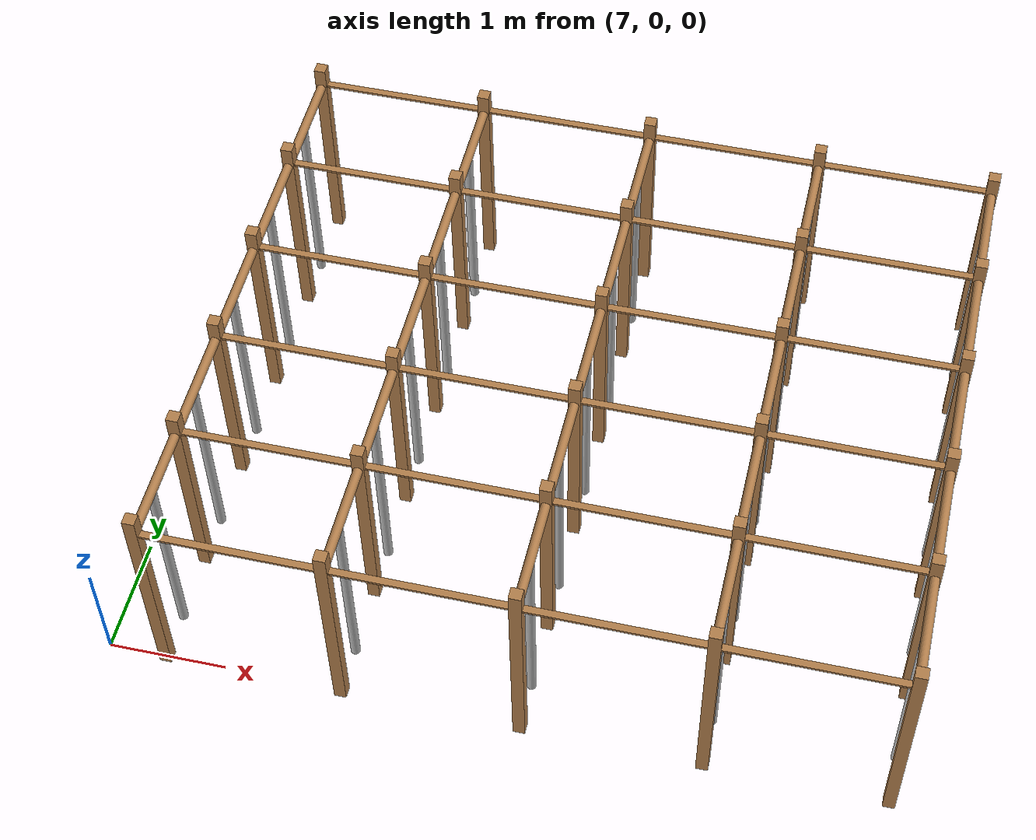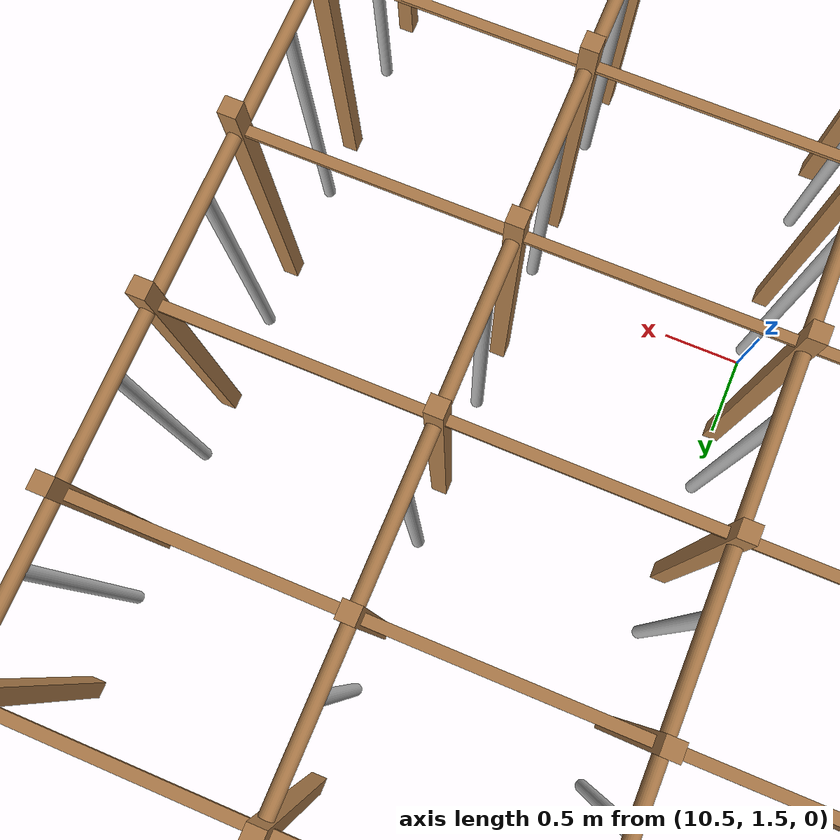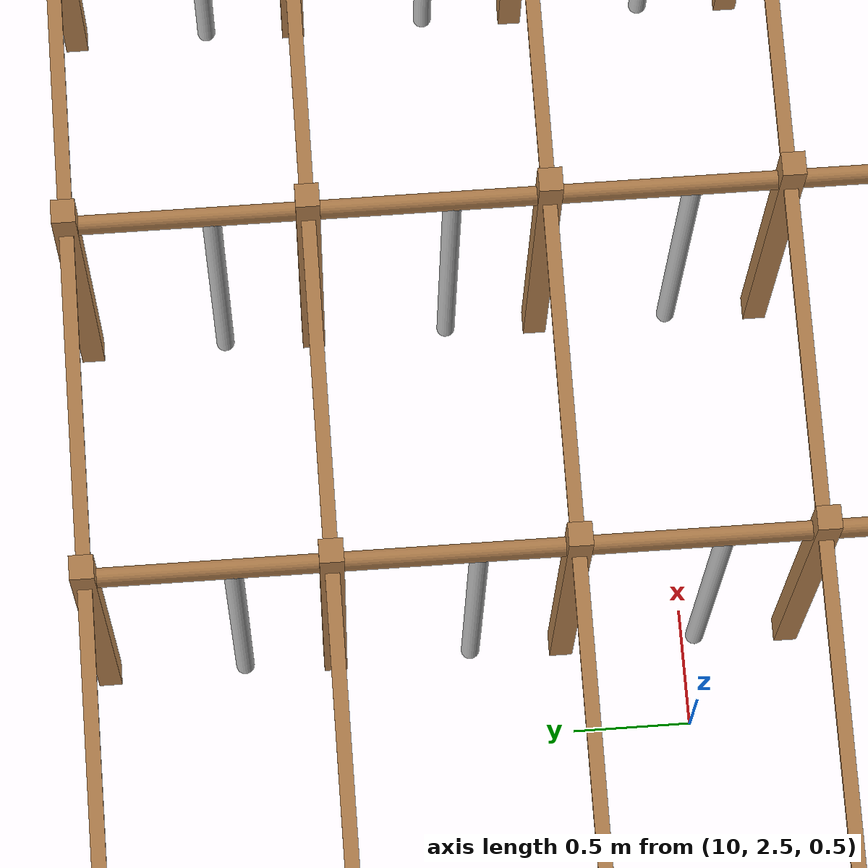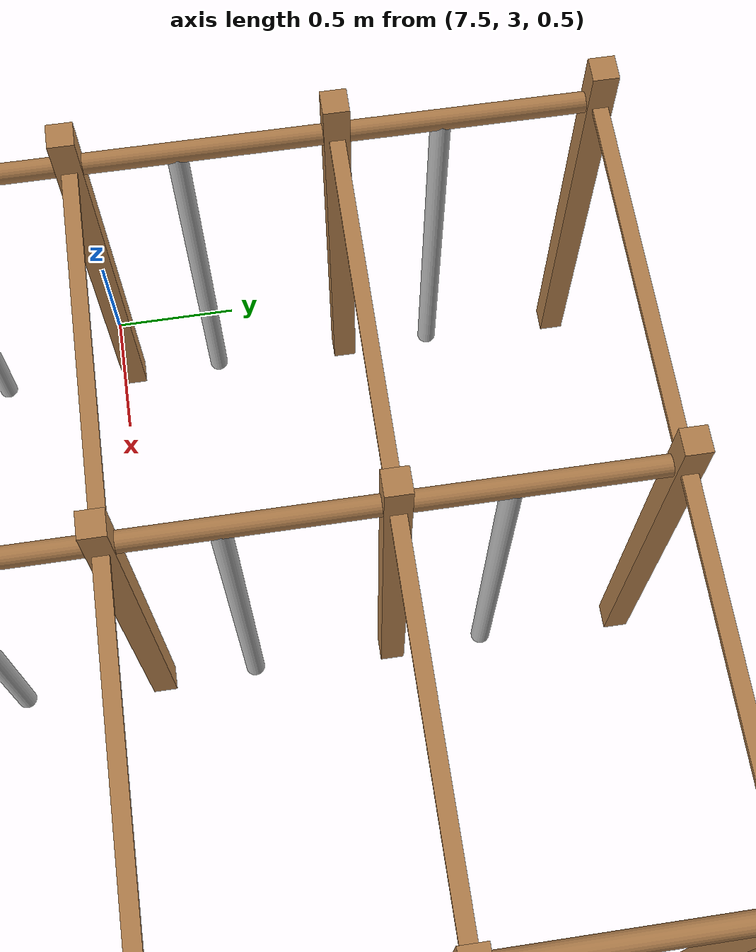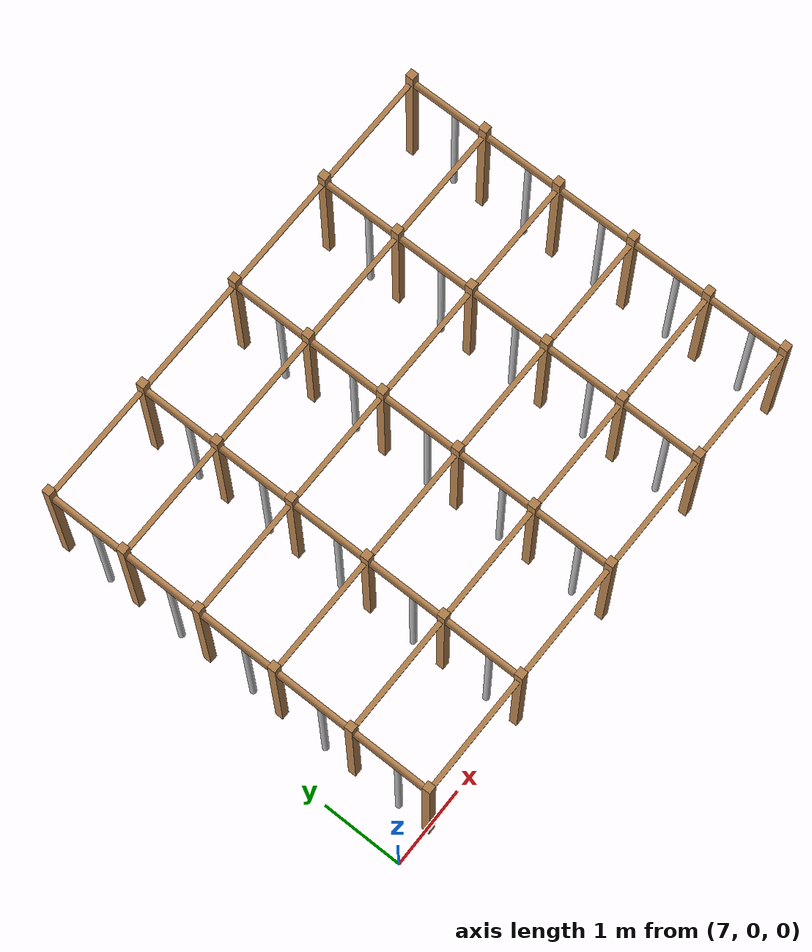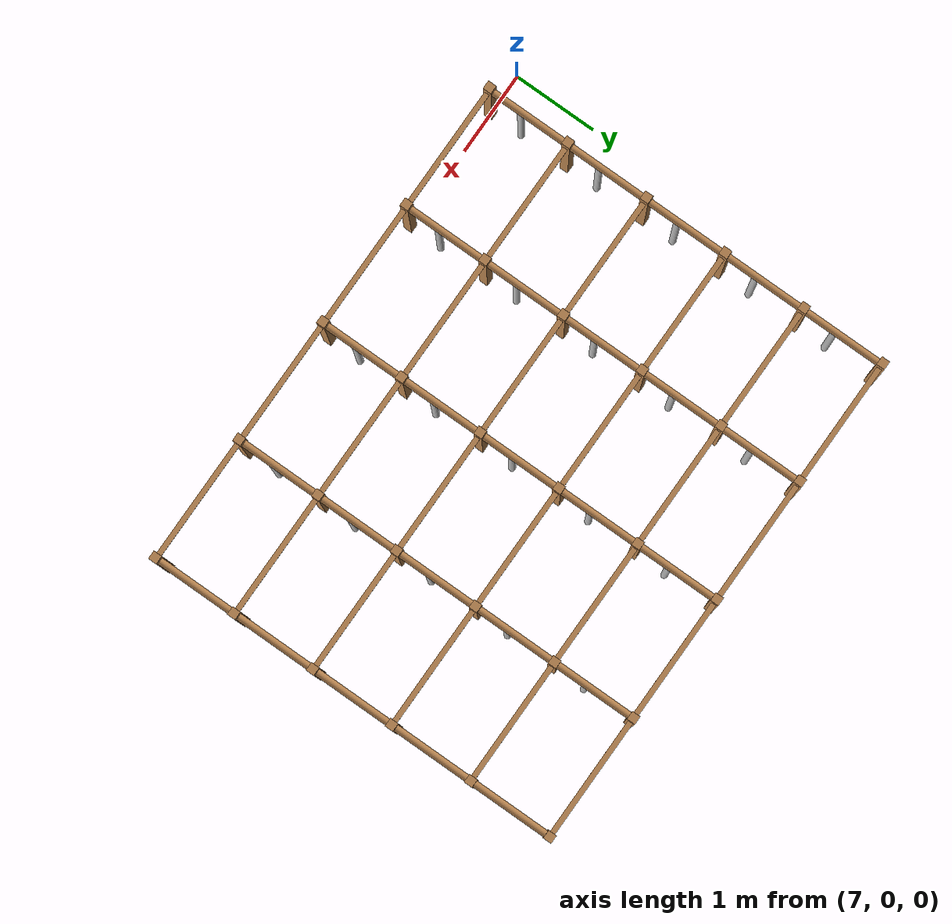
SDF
<sdf version="1.4">
 <model name="pergola">
  <include><name>post_55</name><pose>7.5 0.0 0 0 0 0</pose><uri>model://post</uri></include>
  <include><name>post_56</name><pose>7.5 1.0 0 0 0 0</pose><uri>model://post</uri></include>
  <include><name>post_57</name><pose>7.5 2.0 0 0 0 0</pose><uri>model://post</uri></include>
  <include><name>post_58</name><pose>7.5 3.0 0 0 0 0</pose><uri>model://post</uri></include>
  <include><name>post_59</name><pose>7.5 4.0 0 0 0 0</pose><uri>model://post</uri></include>
  <include><name>post_60</name><pose>7.5 5.0 0 0 0 0</pose><uri>model://post</uri></include>
  <include><name>post_66</name><pose>9.0 0.0 0 0 0 0</pose><uri>model://post</uri></include>
  <include><name>post_67</name><pose>9.0 1.0 0 0 0 0</pose><uri>model://post</uri></include>
  <include><name>post_68</name><pose>9.0 2.0 0 0 0 0</pose><uri>model://post</uri></include>
  <include><name>post_69</name><pose>9.0 3.0 0 0 0 0</pose><uri>model://post</uri></include>
  <include><name>post_70</name><pose>9.0 4.0 0 0 0 0</pose><uri>model://post</uri></include>
  <include><name>post_71</name><pose>9.0 5.0 0 0 0 0</pose><uri>model://post</uri></include>
  <include><name>post_77</name><pose>10.5 0.0 0 0 0 0</pose><uri>model://post</uri></include>
  <include><name>post_78</name><pose>10.5 1.0 0 0 0 0</pose><uri>model://post</uri></include>
  <include><name>post_79</name><pose>10.5 2.0 0 0 0 0</pose><uri>model://post</uri></include>
  <include><name>post_80</name><pose>10.5 3.0 0 0 0 0</pose><uri>model://post</uri></include>
  <include><name>post_81</name><pose>10.5 4.0 0 0 0 0</pose><uri>model://post</uri></include>
  <include><name>post_82</name><pose>10.5 5.0 0 0 0 0</pose><uri>model://post</uri></include>
  <include><name>post_88</name><pose>12.0 0.0 0 0 0 0</pose><uri>model://post</uri></include>
  <include><name>post_89</name><pose>12.0 1.0 0 0 0 0</pose><uri>model://post</uri></include>
  <include><name>post_90</name><pose>12.0 2.0 0 0 0 0</pose><uri>model://post</uri></include>
  <include><name>post_91</name><pose>12.0 3.0 0 0 0 0</pose><uri>model://post</uri></include>
  <include><name>post_92</name><pose>12.0 4.0 0 0 0 0</pose><uri>model://post</uri></include>
  <include><name>post_93</name><pose>12.0 5.0 0 0 0 0</pose><uri>model://post</uri></include>
  <include><name>post_99</name><pose>13.5 0.0 0 0 0 0</pose><uri>model://post</uri></include>
  <include><name>post_100</name><pose>13.5 1.0 0 0 0 0</pose><uri>model://post</uri></include>
  <include><name>post_101</name><pose>13.5 2.0 0 0 0 0</pose><uri>model://post</uri></include>
  <include><name>post_102</name><pose>13.5 3.0 0 0 0 0</pose><uri>model://post</uri></include>
  <include><name>post_103</name><pose>13.5 4.0 0 0 0 0</pose><uri>model://post</uri></include>
  <include><name>post_104</name><pose>13.5 5.0 0 0 0 0</pose><uri>model://post</uri></include>
  <link name="beam_55">
   <pose>8.25 0.0 1.81 0 0 0</pose>
   <collision name="collision"><geometry><box><size>1.5 0.06 0.02</size></box></geometry></collision>
   <visual name="visual">
    <geometry><box><size>1.5 0.06 0.02</size></box></geometry>
    <material><script><name>Gazebo/Wood</name></script></material>
   </visual>
   <inertial>
    <mass>5</mass>
    <inertia>
     <ixx>0.0016666666666666668</ixx>
     <ixy>0.0</ixy>
     <ixz>0.0</ixz>
     <iyy>0.9390000000000001</iyy>
     <iyz>0.0</iyz>
     <izz>0.9376666666666665</izz>
    </inertia>
   </inertial>
  </link>
  <link name="beam_56">
   <pose>8.25 1.0 1.81 0 0 0</pose>
   <collision name="collision"><geometry><box><size>1.5 0.06 0.02</size></box></geometry></collision>
   <visual name="visual">
    <geometry><box><size>1.5 0.06 0.02</size></box></geometry>
    <material><script><name>Gazebo/Wood</name></script></material>
   </visual>
   <inertial>
    <mass>5</mass>
    <inertia>
     <ixx>0.0016666666666666668</ixx>
     <ixy>0.0</ixy>
     <ixz>0.0</ixz>
     <iyy>0.9390000000000001</iyy>
     <iyz>0.0</iyz>
     <izz>0.9376666666666665</izz>
    </inertia>
   </inertial>
  </link>
  <link name="beam_57">
   <pose>8.25 2.0 1.81 0 0 0</pose>
   <collision name="collision"><geometry><box><size>1.5 0.06 0.02</size></box></geometry></collision>
   <visual name="visual">
    <geometry><box><size>1.5 0.06 0.02</size></box></geometry>
    <material><script><name>Gazebo/Wood</name></script></material>
   </visual>
   <inertial>
    <mass>5</mass>
    <inertia>
     <ixx>0.0016666666666666668</ixx>
     <ixy>0.0</ixy>
     <ixz>0.0</ixz>
     <iyy>0.9390000000000001</iyy>
     <iyz>0.0</iyz>
     <izz>0.9376666666666665</izz>
    </inertia>
   </inertial>
  </link>
  <link name="beam_58">
   <pose>8.25 3.0 1.81 0 0 0</pose>
   <collision name="collision"><geometry><box><size>1.5 0.06 0.02</size></box></geometry></collision>
   <visual name="visual">
    <geometry><box><size>1.5 0.06 0.02</size></box></geometry>
    <material><script><name>Gazebo/Wood</name></script></material>
   </visual>
   <inertial>
    <mass>5</mass>
    <inertia>
     <ixx>0.0016666666666666668</ixx>
     <ixy>0.0</ixy>
     <ixz>0.0</ixz>
     <iyy>0.9390000000000001</iyy>
     <iyz>0.0</iyz>
     <izz>0.9376666666666665</izz>
    </inertia>
   </inertial>
  </link>
  <link name="beam_59">
   <pose>8.25 4.0 1.81 0 0 0</pose>
   <collision name="collision"><geometry><box><size>1.5 0.06 0.02</size></box></geometry></collision>
   <visual name="visual">
    <geometry><box><size>1.5 0.06 0.02</size></box></geometry>
    <material><script><name>Gazebo/Wood</name></script></material>
   </visual>
   <inertial>
    <mass>5</mass>
    <inertia>
     <ixx>0.0016666666666666668</ixx>
     <ixy>0.0</ixy>
     <ixz>0.0</ixz>
     <iyy>0.9390000000000001</iyy>
     <iyz>0.0</iyz>
     <izz>0.9376666666666665</izz>
    </inertia>
   </inertial>
  </link>
  <link name="beam_60">
   <pose>8.25 5.0 1.81 0 0 0</pose>
   <collision name="collision"><geometry><box><size>1.5 0.06 0.02</size></box></geometry></collision>
   <visual name="visual">
    <geometry><box><size>1.5 0.06 0.02</size></box></geometry>
    <material><script><name>Gazebo/Wood</name></script></material>
   </visual>
   <inertial>
    <mass>5</mass>
    <inertia>
     <ixx>0.0016666666666666668</ixx>
     <ixy>0.0</ixy>
     <ixz>0.0</ixz>
     <iyy>0.9390000000000001</iyy>
     <iyz>0.0</iyz>
     <izz>0.9376666666666665</izz>
    </inertia>
   </inertial>
  </link>
  <link name="beam_66">
   <pose>9.75 0.0 1.81 0 0 0</pose>
   <collision name="collision"><geometry><box><size>1.5 0.06 0.02</size></box></geometry></collision>
   <visual name="visual">
    <geometry><box><size>1.5 0.06 0.02</size></box></geometry>
    <material><script><name>Gazebo/Wood</name></script></material>
   </visual>
   <inertial>
    <mass>5</mass>
    <inertia>
     <ixx>0.0016666666666666668</ixx>
     <ixy>0.0</ixy>
     <ixz>0.0</ixz>
     <iyy>0.9390000000000001</iyy>
     <iyz>0.0</iyz>
     <izz>0.9376666666666665</izz>
    </inertia>
   </inertial>
  </link>
  <link name="beam_67">
   <pose>9.75 1.0 1.81 0 0 0</pose>
   <collision name="collision"><geometry><box><size>1.5 0.06 0.02</size></box></geometry></collision>
   <visual name="visual">
    <geometry><box><size>1.5 0.06 0.02</size></box></geometry>
    <material><script><name>Gazebo/Wood</name></script></material>
   </visual>
   <inertial>
    <mass>5</mass>
    <inertia>
     <ixx>0.0016666666666666668</ixx>
     <ixy>0.0</ixy>
     <ixz>0.0</ixz>
     <iyy>0.9390000000000001</iyy>
     <iyz>0.0</iyz>
     <izz>0.9376666666666665</izz>
    </inertia>
   </inertial>
  </link>
  <link name="beam_68">
   <pose>9.75 2.0 1.81 0 0 0</pose>
   <collision name="collision"><geometry><box><size>1.5 0.06 0.02</size></box></geometry></collision>
   <visual name="visual">
    <geometry><box><size>1.5 0.06 0.02</size></box></geometry>
    <material><script><name>Gazebo/Wood</name></script></material>
   </visual>
   <inertial>
    <mass>5</mass>
    <inertia>
     <ixx>0.0016666666666666668</ixx>
     <ixy>0.0</ixy>
     <ixz>0.0</ixz>
     <iyy>0.9390000000000001</iyy>
     <iyz>0.0</iyz>
     <izz>0.9376666666666665</izz>
    </inertia>
   </inertial>
  </link>
  <link name="beam_69">
   <pose>9.75 3.0 1.81 0 0 0</pose>
   <collision name="collision"><geometry><box><size>1.5 0.06 0.02</size></box></geometry></collision>
   <visual name="visual">
    <geometry><box><size>1.5 0.06 0.02</size></box></geometry>
    <material><script><name>Gazebo/Wood</name></script></material>
   </visual>
   <inertial>
    <mass>5</mass>
    <inertia>
     <ixx>0.0016666666666666668</ixx>
     <ixy>0.0</ixy>
     <ixz>0.0</ixz>
     <iyy>0.9390000000000001</iyy>
     <iyz>0.0</iyz>
     <izz>0.9376666666666665</izz>
    </inertia>
   </inertial>
  </link>
  <link name="beam_70">
   <pose>9.75 4.0 1.81 0 0 0</pose>
   <collision name="collision"><geometry><box><size>1.5 0.06 0.02</size></box></geometry></collision>
   <visual name="visual">
    <geometry><box><size>1.5 0.06 0.02</size></box></geometry>
    <material><script><name>Gazebo/Wood</name></script></material>
   </visual>
   <inertial>
    <mass>5</mass>
    <inertia>
     <ixx>0.0016666666666666668</ixx>
     <ixy>0.0</ixy>
     <ixz>0.0</ixz>
     <iyy>0.9390000000000001</iyy>
     <iyz>0.0</iyz>
     <izz>0.9376666666666665</izz>
    </inertia>
   </inertial>
  </link>
  <link name="beam_71">
   <pose>9.75 5.0 1.81 0 0 0</pose>
   <collision name="collision"><geometry><box><size>1.5 0.06 0.02</size></box></geometry></collision>
   <visual name="visual">
    <geometry><box><size>1.5 0.06 0.02</size></box></geometry>
    <material><script><name>Gazebo/Wood</name></script></material>
   </visual>
   <inertial>
    <mass>5</mass>
    <inertia>
     <ixx>0.0016666666666666668</ixx>
     <ixy>0.0</ixy>
     <ixz>0.0</ixz>
     <iyy>0.9390000000000001</iyy>
     <iyz>0.0</iyz>
     <izz>0.9376666666666665</izz>
    </inertia>
   </inertial>
  </link>
  <link name="beam_77">
   <pose>11.25 0.0 1.81 0 0 0</pose>
   <collision name="collision"><geometry><box><size>1.5 0.06 0.02</size></box></geometry></collision>
   <visual name="visual">
    <geometry><box><size>1.5 0.06 0.02</size></box></geometry>
    <material><script><name>Gazebo/Wood</name></script></material>
   </visual>
   <inertial>
    <mass>5</mass>
    <inertia>
     <ixx>0.0016666666666666668</ixx>
     <ixy>0.0</ixy>
     <ixz>0.0</ixz>
     <iyy>0.9390000000000001</iyy>
     <iyz>0.0</iyz>
     <izz>0.9376666666666665</izz>
    </inertia>
   </inertial>
  </link>
  <link name="beam_78">
   <pose>11.25 1.0 1.81 0 0 0</pose>
   <collision name="collision"><geometry><box><size>1.5 0.06 0.02</size></box></geometry></collision>
   <visual name="visual">
    <geometry><box><size>1.5 0.06 0.02</size></box></geometry>
    <material><script><name>Gazebo/Wood</name></script></material>
   </visual>
   <inertial>
    <mass>5</mass>
    <inertia>
     <ixx>0.0016666666666666668</ixx>
     <ixy>0.0</ixy>
     <ixz>0.0</ixz>
     <iyy>0.9390000000000001</iyy>
     <iyz>0.0</iyz>
     <izz>0.9376666666666665</izz>
    </inertia>
   </inertial>
  </link>
  <link name="beam_79">
   <pose>11.25 2.0 1.81 0 0 0</pose>
   <collision name="collision"><geometry><box><size>1.5 0.06 0.02</size></box></geometry></collision>
   <visual name="visual">
    <geometry><box><size>1.5 0.06 0.02</size></box></geometry>
    <material><script><name>Gazebo/Wood</name></script></material>
   </visual>
   <inertial>
    <mass>5</mass>
    <inertia>
     <ixx>0.0016666666666666668</ixx>
     <ixy>0.0</ixy>
     <ixz>0.0</ixz>
     <iyy>0.9390000000000001</iyy>
     <iyz>0.0</iyz>
     <izz>0.9376666666666665</izz>
    </inertia>
   </inertial>
  </link>
  <link name="beam_80">
   <pose>11.25 3.0 1.81 0 0 0</pose>
   <collision name="collision"><geometry><box><size>1.5 0.06 0.02</size></box></geometry></collision>
   <visual name="visual">
    <geometry><box><size>1.5 0.06 0.02</size></box></geometry>
    <material><script><name>Gazebo/Wood</name></script></material>
   </visual>
   <inertial>
    <mass>5</mass>
    <inertia>
     <ixx>0.0016666666666666668</ixx>
     <ixy>0.0</ixy>
     <ixz>0.0</ixz>
     <iyy>0.9390000000000001</iyy>
     <iyz>0.0</iyz>
     <izz>0.9376666666666665</izz>
    </inertia>
   </inertial>
  </link>
  <link name="beam_81">
   <pose>11.25 4.0 1.81 0 0 0</pose>
   <collision name="collision"><geometry><box><size>1.5 0.06 0.02</size></box></geometry></collision>
   <visual name="visual">
    <geometry><box><size>1.5 0.06 0.02</size></box></geometry>
    <material><script><name>Gazebo/Wood</name></script></material>
   </visual>
   <inertial>
    <mass>5</mass>
    <inertia>
     <ixx>0.0016666666666666668</ixx>
     <ixy>0.0</ixy>
     <ixz>0.0</ixz>
     <iyy>0.9390000000000001</iyy>
     <iyz>0.0</iyz>
     <izz>0.9376666666666665</izz>
    </inertia>
   </inertial>
  </link>
  <link name="beam_82">
   <pose>11.25 5.0 1.81 0 0 0</pose>
   <collision name="collision"><geometry><box><size>1.5 0.06 0.02</size></box></geometry></collision>
   <visual name="visual">
    <geometry><box><size>1.5 0.06 0.02</size></box></geometry>
    <material><script><name>Gazebo/Wood</name></script></material>
   </visual>
   <inertial>
    <mass>5</mass>
    <inertia>
     <ixx>0.0016666666666666668</ixx>
     <ixy>0.0</ixy>
     <ixz>0.0</ixz>
     <iyy>0.9390000000000001</iyy>
     <iyz>0.0</iyz>
     <izz>0.9376666666666665</izz>
    </inertia>
   </inertial>
  </link>
  <link name="beam_88">
   <pose>12.75 0.0 1.81 0 0 0</pose>
   <collision name="collision"><geometry><box><size>1.5 0.06 0.02</size></box></geometry></collision>
   <visual name="visual">
    <geometry><box><size>1.5 0.06 0.02</size></box></geometry>
    <material><script><name>Gazebo/Wood</name></script></material>
   </visual>
   <inertial>
    <mass>5</mass>
    <inertia>
     <ixx>0.0016666666666666668</ixx>
     <ixy>0.0</ixy>
     <ixz>0.0</ixz>
     <iyy>0.9390000000000001</iyy>
     <iyz>0.0</iyz>
     <izz>0.9376666666666665</izz>
    </inertia>
   </inertial>
  </link>
  <link name="beam_89">
   <pose>12.75 1.0 1.81 0 0 0</pose>
   <collision name="collision"><geometry><box><size>1.5 0.06 0.02</size></box></geometry></collision>
   <visual name="visual">
    <geometry><box><size>1.5 0.06 0.02</size></box></geometry>
    <material><script><name>Gazebo/Wood</name></script></material>
   </visual>
   <inertial>
    <mass>5</mass>
    <inertia>
     <ixx>0.0016666666666666668</ixx>
     <ixy>0.0</ixy>
     <ixz>0.0</ixz>
     <iyy>0.9390000000000001</iyy>
     <iyz>0.0</iyz>
     <izz>0.9376666666666665</izz>
    </inertia>
   </inertial>
  </link>
  <link name="beam_90">
   <pose>12.75 2.0 1.81 0 0 0</pose>
   <collision name="collision"><geometry><box><size>1.5 0.06 0.02</size></box></geometry></collision>
   <visual name="visual">
    <geometry><box><size>1.5 0.06 0.02</size></box></geometry>
    <material><script><name>Gazebo/Wood</name></script></material>
   </visual>
   <inertial>
    <mass>5</mass>
    <inertia>
     <ixx>0.0016666666666666668</ixx>
     <ixy>0.0</ixy>
     <ixz>0.0</ixz>
     <iyy>0.9390000000000001</iyy>
     <iyz>0.0</iyz>
     <izz>0.9376666666666665</izz>
    </inertia>
   </inertial>
  </link>
  <link name="beam_91">
   <pose>12.75 3.0 1.81 0 0 0</pose>
   <collision name="collision"><geometry><box><size>1.5 0.06 0.02</size></box></geometry></collision>
   <visual name="visual">
    <geometry><box><size>1.5 0.06 0.02</size></box></geometry>
    <material><script><name>Gazebo/Wood</name></script></material>
   </visual>
   <inertial>
    <mass>5</mass>
    <inertia>
     <ixx>0.0016666666666666668</ixx>
     <ixy>0.0</ixy>
     <ixz>0.0</ixz>
     <iyy>0.9390000000000001</iyy>
     <iyz>0.0</iyz>
     <izz>0.9376666666666665</izz>
    </inertia>
   </inertial>
  </link>
  <link name="beam_92">
   <pose>12.75 4.0 1.81 0 0 0</pose>
   <collision name="collision"><geometry><box><size>1.5 0.06 0.02</size></box></geometry></collision>
   <visual name="visual">
    <geometry><box><size>1.5 0.06 0.02</size></box></geometry>
    <material><script><name>Gazebo/Wood</name></script></material>
   </visual>
   <inertial>
    <mass>5</mass>
    <inertia>
     <ixx>0.0016666666666666668</ixx>
     <ixy>0.0</ixy>
     <ixz>0.0</ixz>
     <iyy>0.9390000000000001</iyy>
     <iyz>0.0</iyz>
     <izz>0.9376666666666665</izz>
    </inertia>
   </inertial>
  </link>
  <link name="beam_93">
   <pose>12.75 5.0 1.81 0 0 0</pose>
   <collision name="collision"><geometry><box><size>1.5 0.06 0.02</size></box></geometry></collision>
   <visual name="visual">
    <geometry><box><size>1.5 0.06 0.02</size></box></geometry>
    <material><script><name>Gazebo/Wood</name></script></material>
   </visual>
   <inertial>
    <mass>5</mass>
    <inertia>
     <ixx>0.0016666666666666668</ixx>
     <ixy>0.0</ixy>
     <ixz>0.0</ixz>
     <iyy>0.9390000000000001</iyy>
     <iyz>0.0</iyz>
     <izz>0.9376666666666665</izz>
    </inertia>
   </inertial>
  </link>
  <include><name>tree_50</name><pose>7.5 0.4 0 0 0 0</pose><uri>model://tree_trunk</uri></include>
  <include><name>tree_51</name><pose>7.5 1.4 0 0 0 0</pose><uri>model://tree_trunk</uri></include>
  <include><name>tree_52</name><pose>7.5 2.4 0 0 0 0</pose><uri>model://tree_trunk</uri></include>
  <include><name>tree_53</name><pose>7.5 3.4 0 0 0 0</pose><uri>model://tree_trunk</uri></include>
  <include><name>tree_54</name><pose>7.5 4.4 0 0 0 0</pose><uri>model://tree_trunk</uri></include>
  <include><name>tree_60</name><pose>9.0 0.4 0 0 0 0</pose><uri>model://tree_trunk</uri></include>
  <include><name>tree_61</name><pose>9.0 1.4 0 0 0 0</pose><uri>model://tree_trunk</uri></include>
  <include><name>tree_62</name><pose>9.0 2.4 0 0 0 0</pose><uri>model://tree_trunk</uri></include>
  <include><name>tree_63</name><pose>9.0 3.4 0 0 0 0</pose><uri>model://tree_trunk</uri></include>
  <include><name>tree_64</name><pose>9.0 4.4 0 0 0 0</pose><uri>model://tree_trunk</uri></include>
  <include><name>tree_70</name><pose>10.5 0.4 0 0 0 0</pose><uri>model://tree_trunk</uri></include>
  <include><name>tree_71</name><pose>10.5 1.4 0 0 0 0</pose><uri>model://tree_trunk</uri></include>
  <include><name>tree_72</name><pose>10.5 2.4 0 0 0 0</pose><uri>model://tree_trunk</uri></include>
  <include><name>tree_73</name><pose>10.5 3.4 0 0 0 0</pose><uri>model://tree_trunk</uri></include>
  <include><name>tree_74</name><pose>10.5 4.4 0 0 0 0</pose><uri>model://tree_trunk</uri></include>
  <include><name>tree_80</name><pose>12.0 0.4 0 0 0 0</pose><uri>model://tree_trunk</uri></include>
  <include><name>tree_81</name><pose>12.0 1.4 0 0 0 0</pose><uri>model://tree_trunk</uri></include>
  <include><name>tree_82</name><pose>12.0 2.4 0 0 0 0</pose><uri>model://tree_trunk</uri></include>
  <include><name>tree_83</name><pose>12.0 3.4 0 0 0 0</pose><uri>model://tree_trunk</uri></include>
  <include><name>tree_84</name><pose>12.0 4.4 0 0 0 0</pose><uri>model://tree_trunk</uri></include>
  <include><name>tree_90</name><pose>13.5 0.4 0 0 0 0</pose><uri>model://tree_trunk</uri></include>
  <include><name>tree_91</name><pose>13.5 1.4 0 0 0 0</pose><uri>model://tree_trunk</uri></include>
  <include><name>tree_92</name><pose>13.5 2.4 0 0 0 0</pose><uri>model://tree_trunk</uri></include>
  <include><name>tree_93</name><pose>13.5 3.4 0 0 0 0</pose><uri>model://tree_trunk</uri></include>
  <include><name>tree_94</name><pose>13.5 4.4 0 0 0 0</pose><uri>model://tree_trunk</uri></include>
  <link name="baseBranch_50">
   <pose>7.5 0.5 1.8 1.5707963267948966 0 0</pose>
   <collision name="collision">
    <geometry><cylinder><radius>0.04</radius><length>0.94</length></cylinder></geometry>
   </collision>
   <visual name="visual">
    <geometry><cylinder><radius>0.04</radius><length>0.94</length></cylinder></geometry>
    <material><script><name>Gazebo/WoodFloor</name></script></material>
   </visual>
   <inertial>
    <mass>10</mass>
    <inertia>
     <ixx>0.7403333333333334</ixx>
     <ixy>0.0</ixy>
     <ixz>0.0</ixz>
     <iyy>0.7403333333333334</iyy>
     <iyz>0.0</iyz>
     <izz>0.008</izz>
    </inertia>
   </inertial>
  </link>
  <link name="baseBranch_51">
   <pose>7.5 1.5 1.8 1.5707963267948966 0 0</pose>
   <collision name="collision">
    <geometry><cylinder><radius>0.04</radius><length>0.94</length></cylinder></geometry>
   </collision>
   <visual name="visual">
    <geometry><cylinder><radius>0.04</radius><length>0.94</length></cylinder></geometry>
    <material><script><name>Gazebo/WoodFloor</name></script></material>
   </visual>
   <inertial>
    <mass>10</mass>
    <inertia>
     <ixx>0.7403333333333334</ixx>
     <ixy>0.0</ixy>
     <ixz>0.0</ixz>
     <iyy>0.7403333333333334</iyy>
     <iyz>0.0</iyz>
     <izz>0.008</izz>
    </inertia>
   </inertial>
  </link>
  <link name="baseBranch_52">
   <pose>7.5 2.5 1.8 1.5707963267948966 0 0</pose>
   <collision name="collision">
    <geometry><cylinder><radius>0.04</radius><length>0.94</length></cylinder></geometry>
   </collision>
   <visual name="visual">
    <geometry><cylinder><radius>0.04</radius><length>0.94</length></cylinder></geometry>
    <material><script><name>Gazebo/WoodFloor</name></script></material>
   </visual>
   <inertial>
    <mass>10</mass>
    <inertia>
     <ixx>0.7403333333333334</ixx>
     <ixy>0.0</ixy>
     <ixz>0.0</ixz>
     <iyy>0.7403333333333334</iyy>
     <iyz>0.0</iyz>
     <izz>0.008</izz>
    </inertia>
   </inertial>
  </link>
  <link name="baseBranch_53">
   <pose>7.5 3.5 1.8 1.5707963267948966 0 0</pose>
   <collision name="collision">
    <geometry><cylinder><radius>0.04</radius><length>0.94</length></cylinder></geometry>
   </collision>
   <visual name="visual">
    <geometry><cylinder><radius>0.04</radius><length>0.94</length></cylinder></geometry>
    <material><script><name>Gazebo/WoodFloor</name></script></material>
   </visual>
   <inertial>
    <mass>10</mass>
    <inertia>
     <ixx>0.7403333333333334</ixx>
     <ixy>0.0</ixy>
     <ixz>0.0</ixz>
     <iyy>0.7403333333333334</iyy>
     <iyz>0.0</iyz>
     <izz>0.008</izz>
    </inertia>
   </inertial>
  </link>
  <link name="baseBranch_54">
   <pose>7.5 4.5 1.8 1.5707963267948966 0 0</pose>
   <collision name="collision">
    <geometry><cylinder><radius>0.04</radius><length>0.94</length></cylinder></geometry>
   </collision>
   <visual name="visual">
    <geometry><cylinder><radius>0.04</radius><length>0.94</length></cylinder></geometry>
    <material><script><name>Gazebo/WoodFloor</name></script></material>
   </visual>
   <inertial>
    <mass>10</mass>
    <inertia>
     <ixx>0.7403333333333334</ixx>
     <ixy>0.0</ixy>
     <ixz>0.0</ixz>
     <iyy>0.7403333333333334</iyy>
     <iyz>0.0</iyz>
     <izz>0.008</izz>
    </inertia>
   </inertial>
  </link>
  <link name="baseBranch_60">
   <pose>9.0 0.5 1.8 1.5707963267948966 0 0</pose>
   <collision name="collision">
    <geometry><cylinder><radius>0.04</radius><length>0.94</length></cylinder></geometry>
   </collision>
   <visual name="visual">
    <geometry><cylinder><radius>0.04</radius><length>0.94</length></cylinder></geometry>
    <material><script><name>Gazebo/WoodFloor</name></script></material>
   </visual>
   <inertial>
    <mass>10</mass>
    <inertia>
     <ixx>0.7403333333333334</ixx>
     <ixy>0.0</ixy>
     <ixz>0.0</ixz>
     <iyy>0.7403333333333334</iyy>
     <iyz>0.0</iyz>
     <izz>0.008</izz>
    </inertia>
   </inertial>
  </link>
  <link name="baseBranch_61">
   <pose>9.0 1.5 1.8 1.5707963267948966 0 0</pose>
   <collision name="collision">
    <geometry><cylinder><radius>0.04</radius><length>0.94</length></cylinder></geometry>
   </collision>
   <visual name="visual">
    <geometry><cylinder><radius>0.04</radius><length>0.94</length></cylinder></geometry>
    <material><script><name>Gazebo/WoodFloor</name></script></material>
   </visual>
   <inertial>
    <mass>10</mass>
    <inertia>
     <ixx>0.7403333333333334</ixx>
     <ixy>0.0</ixy>
     <ixz>0.0</ixz>
     <iyy>0.7403333333333334</iyy>
     <iyz>0.0</iyz>
     <izz>0.008</izz>
    </inertia>
   </inertial>
  </link>
  <link name="baseBranch_62">
   <pose>9.0 2.5 1.8 1.5707963267948966 0 0</pose>
   <collision name="collision">
    <geometry><cylinder><radius>0.04</radius><length>0.94</length></cylinder></geometry>
   </collision>
   <visual name="visual">
    <geometry><cylinder><radius>0.04</radius><length>0.94</length></cylinder></geometry>
    <material><script><name>Gazebo/WoodFloor</name></script></material>
   </visual>
   <inertial>
    <mass>10</mass>
    <inertia>
     <ixx>0.7403333333333334</ixx>
     <ixy>0.0</ixy>
     <ixz>0.0</ixz>
     <iyy>0.7403333333333334</iyy>
     <iyz>0.0</iyz>
     <izz>0.008</izz>
    </inertia>
   </inertial>
  </link>
  <link name="baseBranch_63">
   <pose>9.0 3.5 1.8 1.5707963267948966 0 0</pose>
   <collision name="collision">
    <geometry><cylinder><radius>0.04</radius><length>0.94</length></cylinder></geometry>
   </collision>
   <visual name="visual">
    <geometry><cylinder><radius>0.04</radius><length>0.94</length></cylinder></geometry>
    <material><script><name>Gazebo/WoodFloor</name></script></material>
   </visual>
   <inertial>
    <mass>10</mass>
    <inertia>
     <ixx>0.7403333333333334</ixx>
     <ixy>0.0</ixy>
     <ixz>0.0</ixz>
     <iyy>0.7403333333333334</iyy>
     <iyz>0.0</iyz>
     <izz>0.008</izz>
    </inertia>
   </inertial>
  </link>
  <link name="baseBranch_64">
   <pose>9.0 4.5 1.8 1.5707963267948966 0 0</pose>
   <collision name="collision">
    <geometry><cylinder><radius>0.04</radius><length>0.94</length></cylinder></geometry>
   </collision>
   <visual name="visual">
    <geometry><cylinder><radius>0.04</radius><length>0.94</length></cylinder></geometry>
    <material><script><name>Gazebo/WoodFloor</name></script></material>
   </visual>
   <inertial>
    <mass>10</mass>
    <inertia>
     <ixx>0.7403333333333334</ixx>
     <ixy>0.0</ixy>
     <ixz>0.0</ixz>
     <iyy>0.7403333333333334</iyy>
     <iyz>0.0</iyz>
     <izz>0.008</izz>
    </inertia>
   </inertial>
  </link>
  <link name="baseBranch_70">
   <pose>10.5 0.5 1.8 1.5707963267948966 0 0</pose>
   <collision name="collision">
    <geometry><cylinder><radius>0.04</radius><length>0.94</length></cylinder></geometry>
   </collision>
   <visual name="visual">
    <geometry><cylinder><radius>0.04</radius><length>0.94</length></cylinder></geometry>
    <material><script><name>Gazebo/WoodFloor</name></script></material>
   </visual>
   <inertial>
    <mass>10</mass>
    <inertia>
     <ixx>0.7403333333333334</ixx>
     <ixy>0.0</ixy>
     <ixz>0.0</ixz>
     <iyy>0.7403333333333334</iyy>
     <iyz>0.0</iyz>
     <izz>0.008</izz>
    </inertia>
   </inertial>
  </link>
  <link name="baseBranch_71">
   <pose>10.5 1.5 1.8 1.5707963267948966 0 0</pose>
   <collision name="collision">
    <geometry><cylinder><radius>0.04</radius><length>0.94</length></cylinder></geometry>
   </collision>
   <visual name="visual">
    <geometry><cylinder><radius>0.04</radius><length>0.94</length></cylinder></geometry>
    <material><script><name>Gazebo/WoodFloor</name></script></material>
   </visual>
   <inertial>
    <mass>10</mass>
    <inertia>
     <ixx>0.7403333333333334</ixx>
     <ixy>0.0</ixy>
     <ixz>0.0</ixz>
     <iyy>0.7403333333333334</iyy>
     <iyz>0.0</iyz>
     <izz>0.008</izz>
    </inertia>
   </inertial>
  </link>
  <link name="baseBranch_72">
   <pose>10.5 2.5 1.8 1.5707963267948966 0 0</pose>
   <collision name="collision">
    <geometry><cylinder><radius>0.04</radius><length>0.94</length></cylinder></geometry>
   </collision>
   <visual name="visual">
    <geometry><cylinder><radius>0.04</radius><length>0.94</length></cylinder></geometry>
    <material><script><name>Gazebo/WoodFloor</name></script></material>
   </visual>
   <inertial>
    <mass>10</mass>
    <inertia>
     <ixx>0.7403333333333334</ixx>
     <ixy>0.0</ixy>
     <ixz>0.0</ixz>
     <iyy>0.7403333333333334</iyy>
     <iyz>0.0</iyz>
     <izz>0.008</izz>
    </inertia>
   </inertial>
  </link>
  <link name="baseBranch_73">
   <pose>10.5 3.5 1.8 1.5707963267948966 0 0</pose>
   <collision name="collision">
    <geometry><cylinder><radius>0.04</radius><length>0.94</length></cylinder></geometry>
   </collision>
   <visual name="visual">
    <geometry><cylinder><radius>0.04</radius><length>0.94</length></cylinder></geometry>
    <material><script><name>Gazebo/WoodFloor</name></script></material>
   </visual>
   <inertial>
    <mass>10</mass>
    <inertia>
     <ixx>0.7403333333333334</ixx>
     <ixy>0.0</ixy>
     <ixz>0.0</ixz>
     <iyy>0.7403333333333334</iyy>
     <iyz>0.0</iyz>
     <izz>0.008</izz>
    </inertia>
   </inertial>
  </link>
  <link name="baseBranch_74">
   <pose>10.5 4.5 1.8 1.5707963267948966 0 0</pose>
   <collision name="collision">
    <geometry><cylinder><radius>0.04</radius><length>0.94</length></cylinder></geometry>
   </collision>
   <visual name="visual">
    <geometry><cylinder><radius>0.04</radius><length>0.94</length></cylinder></geometry>
    <material><script><name>Gazebo/WoodFloor</name></script></material>
   </visual>
   <inertial>
    <mass>10</mass>
    <inertia>
     <ixx>0.7403333333333334</ixx>
     <ixy>0.0</ixy>
     <ixz>0.0</ixz>
     <iyy>0.7403333333333334</iyy>
     <iyz>0.0</iyz>
     <izz>0.008</izz>
    </inertia>
   </inertial>
  </link>
  <link name="baseBranch_80">
   <pose>12.0 0.5 1.8 1.5707963267948966 0 0</pose>
   <collision name="collision">
    <geometry><cylinder><radius>0.04</radius><length>0.94</length></cylinder></geometry>
   </collision>
   <visual name="visual">
    <geometry><cylinder><radius>0.04</radius><length>0.94</length></cylinder></geometry>
    <material><script><name>Gazebo/WoodFloor</name></script></material>
   </visual>
   <inertial>
    <mass>10</mass>
    <inertia>
     <ixx>0.7403333333333334</ixx>
     <ixy>0.0</ixy>
     <ixz>0.0</ixz>
     <iyy>0.7403333333333334</iyy>
     <iyz>0.0</iyz>
     <izz>0.008</izz>
    </inertia>
   </inertial>
  </link>
  <link name="baseBranch_81">
   <pose>12.0 1.5 1.8 1.5707963267948966 0 0</pose>
   <collision name="collision">
    <geometry><cylinder><radius>0.04</radius><length>0.94</length></cylinder></geometry>
   </collision>
   <visual name="visual">
    <geometry><cylinder><radius>0.04</radius><length>0.94</length></cylinder></geometry>
    <material><script><name>Gazebo/WoodFloor</name></script></material>
   </visual>
   <inertial>
    <mass>10</mass>
    <inertia>
     <ixx>0.7403333333333334</ixx>
     <ixy>0.0</ixy>
     <ixz>0.0</ixz>
     <iyy>0.7403333333333334</iyy>
     <iyz>0.0</iyz>
     <izz>0.008</izz>
    </inertia>
   </inertial>
  </link>
  <link name="baseBranch_82">
   <pose>12.0 2.5 1.8 1.5707963267948966 0 0</pose>
   <collision name="collision">
    <geometry><cylinder><radius>0.04</radius><length>0.94</length></cylinder></geometry>
   </collision>
   <visual name="visual">
    <geometry><cylinder><radius>0.04</radius><length>0.94</length></cylinder></geometry>
    <material><script><name>Gazebo/WoodFloor</name></script></material>
   </visual>
   <inertial>
    <mass>10</mass>
    <inertia>
     <ixx>0.7403333333333334</ixx>
     <ixy>0.0</ixy>
     <ixz>0.0</ixz>
     <iyy>0.7403333333333334</iyy>
     <iyz>0.0</iyz>
     <izz>0.008</izz>
    </inertia>
   </inertial>
  </link>
  <link name="baseBranch_83">
   <pose>12.0 3.5 1.8 1.5707963267948966 0 0</pose>
   <collision name="collision">
    <geometry><cylinder><radius>0.04</radius><length>0.94</length></cylinder></geometry>
   </collision>
   <visual name="visual">
    <geometry><cylinder><radius>0.04</radius><length>0.94</length></cylinder></geometry>
    <material><script><name>Gazebo/WoodFloor</name></script></material>
   </visual>
   <inertial>
    <mass>10</mass>
    <inertia>
     <ixx>0.7403333333333334</ixx>
     <ixy>0.0</ixy>
     <ixz>0.0</ixz>
     <iyy>0.7403333333333334</iyy>
     <iyz>0.0</iyz>
     <izz>0.008</izz>
    </inertia>
   </inertial>
  </link>
  <link name="baseBranch_84">
   <pose>12.0 4.5 1.8 1.5707963267948966 0 0</pose>
   <collision name="collision">
    <geometry><cylinder><radius>0.04</radius><length>0.94</length></cylinder></geometry>
   </collision>
   <visual name="visual">
    <geometry><cylinder><radius>0.04</radius><length>0.94</length></cylinder></geometry>
    <material><script><name>Gazebo/WoodFloor</name></script></material>
   </visual>
   <inertial>
    <mass>10</mass>
    <inertia>
     <ixx>0.7403333333333334</ixx>
     <ixy>0.0</ixy>
     <ixz>0.0</ixz>
     <iyy>0.7403333333333334</iyy>
     <iyz>0.0</iyz>
     <izz>0.008</izz>
    </inertia>
   </inertial>
  </link>
  <link name="baseBranch_90">
   <pose>13.5 0.5 1.8 1.5707963267948966 0 0</pose>
   <collision name="collision">
    <geometry><cylinder><radius>0.04</radius><length>0.94</length></cylinder></geometry>
   </collision>
   <visual name="visual">
    <geometry><cylinder><radius>0.04</radius><length>0.94</length></cylinder></geometry>
    <material><script><name>Gazebo/WoodFloor</name></script></material>
   </visual>
   <inertial>
    <mass>10</mass>
    <inertia>
     <ixx>0.7403333333333334</ixx>
     <ixy>0.0</ixy>
     <ixz>0.0</ixz>
     <iyy>0.7403333333333334</iyy>
     <iyz>0.0</iyz>
     <izz>0.008</izz>
    </inertia>
   </inertial>
  </link>
  <link name="baseBranch_91">
   <pose>13.5 1.5 1.8 1.5707963267948966 0 0</pose>
   <collision name="collision">
    <geometry><cylinder><radius>0.04</radius><length>0.94</length></cylinder></geometry>
   </collision>
   <visual name="visual">
    <geometry><cylinder><radius>0.04</radius><length>0.94</length></cylinder></geometry>
    <material><script><name>Gazebo/WoodFloor</name></script></material>
   </visual>
   <inertial>
    <mass>10</mass>
    <inertia>
     <ixx>0.7403333333333334</ixx>
     <ixy>0.0</ixy>
     <ixz>0.0</ixz>
     <iyy>0.7403333333333334</iyy>
     <iyz>0.0</iyz>
     <izz>0.008</izz>
    </inertia>
   </inertial>
  </link>
  <link name="baseBranch_92">
   <pose>13.5 2.5 1.8 1.5707963267948966 0 0</pose>
   <collision name="collision">
    <geometry><cylinder><radius>0.04</radius><length>0.94</length></cylinder></geometry>
   </collision>
   <visual name="visual">
    <geometry><cylinder><radius>0.04</radius><length>0.94</length></cylinder></geometry>
    <material><script><name>Gazebo/WoodFloor</name></script></material>
   </visual>
   <inertial>
    <mass>10</mass>
    <inertia>
     <ixx>0.7403333333333334</ixx>
     <ixy>0.0</ixy>
     <ixz>0.0</ixz>
     <iyy>0.7403333333333334</iyy>
     <iyz>0.0</iyz>
     <izz>0.008</izz>
    </inertia>
   </inertial>
  </link>
  <link name="baseBranch_93">
   <pose>13.5 3.5 1.8 1.5707963267948966 0 0</pose>
   <collision name="collision">
    <geometry><cylinder><radius>0.04</radius><length>0.94</length></cylinder></geometry>
   </collision>
   <visual name="visual">
    <geometry><cylinder><radius>0.04</radius><length>0.94</length></cylinder></geometry>
    <material><script><name>Gazebo/WoodFloor</name></script></material>
   </visual>
   <inertial>
    <mass>10</mass>
    <inertia>
     <ixx>0.7403333333333334</ixx>
     <ixy>0.0</ixy>
     <ixz>0.0</ixz>
     <iyy>0.7403333333333334</iyy>
     <iyz>0.0</iyz>
     <izz>0.008</izz>
    </inertia>
   </inertial>
  </link>
  <link name="baseBranch_94">
   <pose>13.5 4.5 1.8 1.5707963267948966 0 0</pose>
   <collision name="collision">
    <geometry><cylinder><radius>0.04</radius><length>0.94</length></cylinder></geometry>
   </collision>
   <visual name="visual">
    <geometry><cylinder><radius>0.04</radius><length>0.94</length></cylinder></geometry>
    <material><script><name>Gazebo/WoodFloor</name></script></material>
   </visual>
   <inertial>
    <mass>10</mass>
    <inertia>
     <ixx>0.7403333333333334</ixx>
     <ixy>0.0</ixy>
     <ixz>0.0</ixz>
     <iyy>0.7403333333333334</iyy>
     <iyz>0.0</iyz>
     <izz>0.008</izz>
    </inertia>
   </inertial>
  </link>
 </model>
</sdf>
